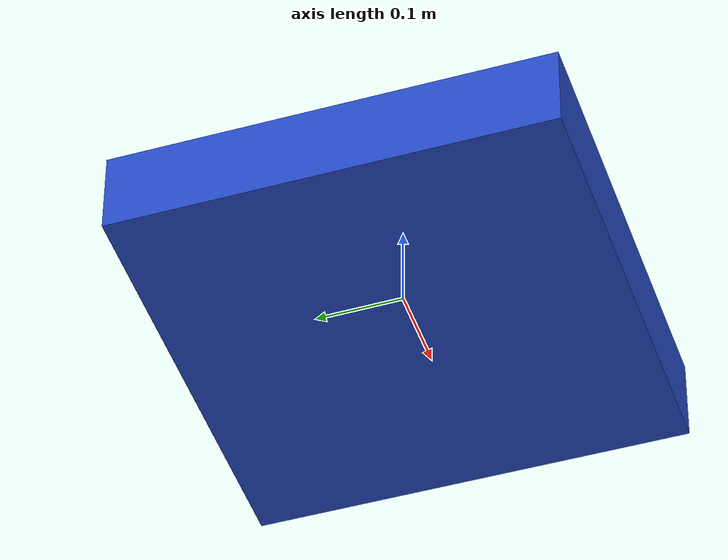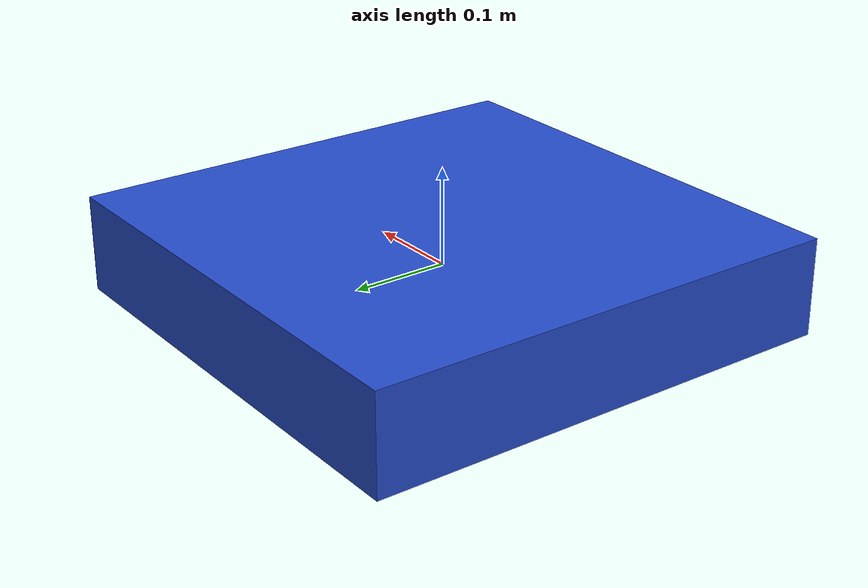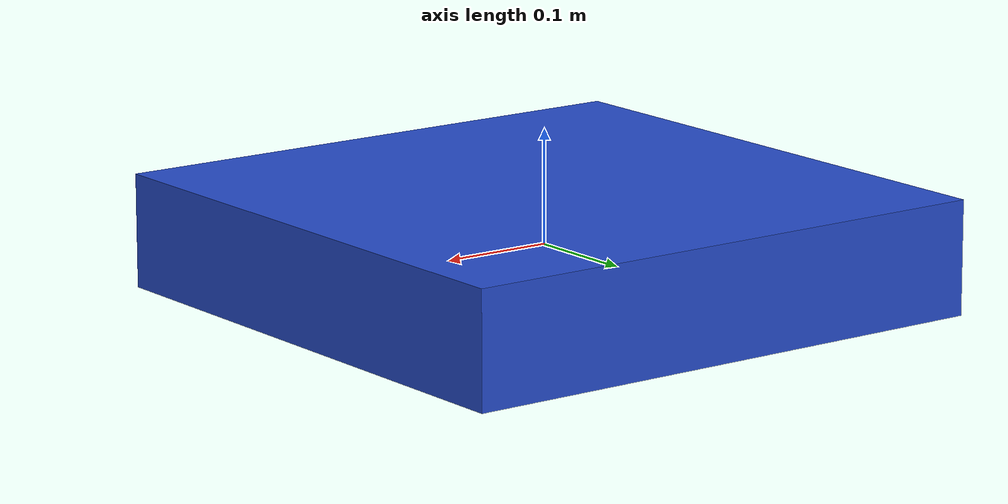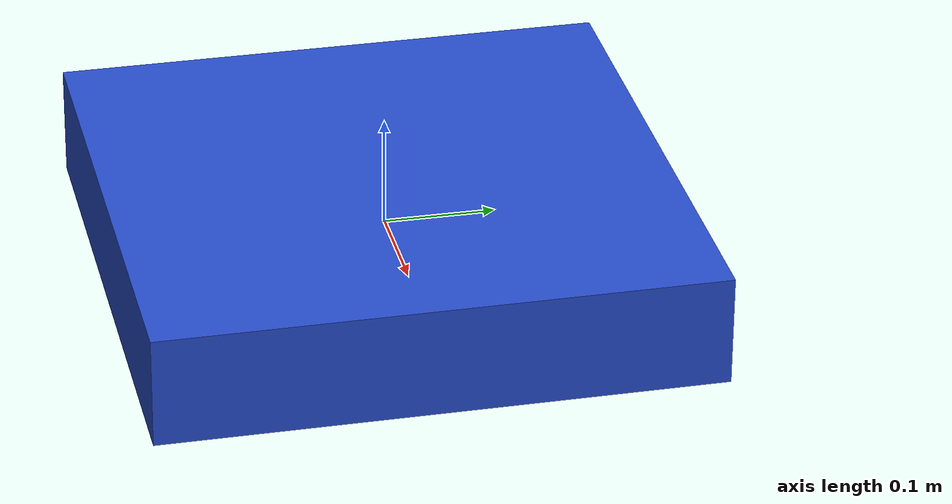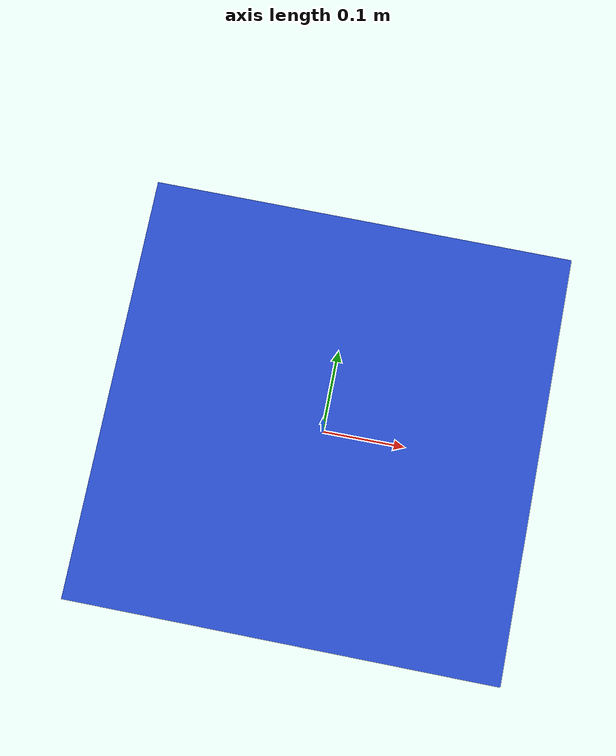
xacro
<?xml version="1.0"?>
<robot xmlns:xacro="http://www.ros.org/wiki/xacro">

    <!-- BASE LINK -->
    <link name="base_link">
        <visual>
            <geometry>
                <box size="0.5 0.5 0.1"/>
            </geometry>
            <material name="blue"/>
        </visual>
    </link>

    <!-- BASE_FOOTPRINT LINK -->
    <joint name="base_footprint_joint" type="fixed">
        <parent link="base_link"/>
        <child link="base_footprint"/>
        <origin xyz="0 0 0" rpy="0 0 0"/>
    </joint>

    <link name="base_footprint">
        <visual>
            <geometry>
                <cylinder radius="0.2" length="0.05"/>
            </geometry>
            <material name="green"/>
        </visual>
    </link>

</robot>
